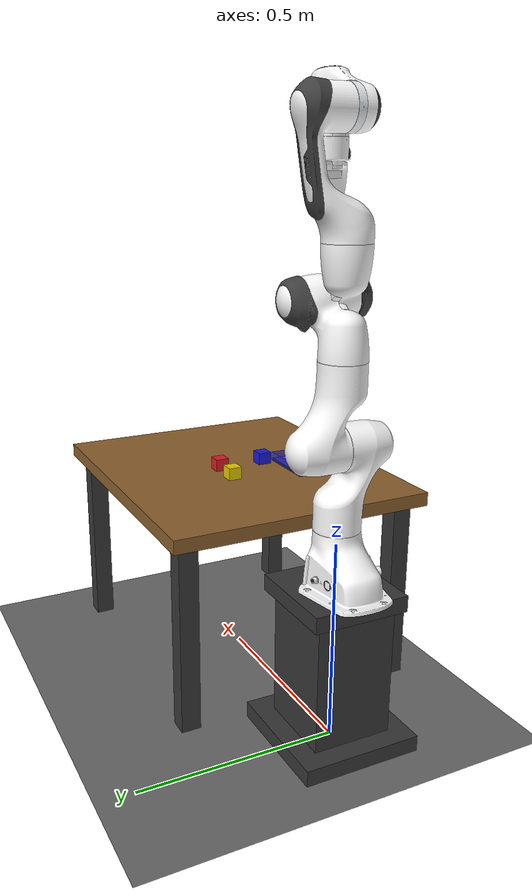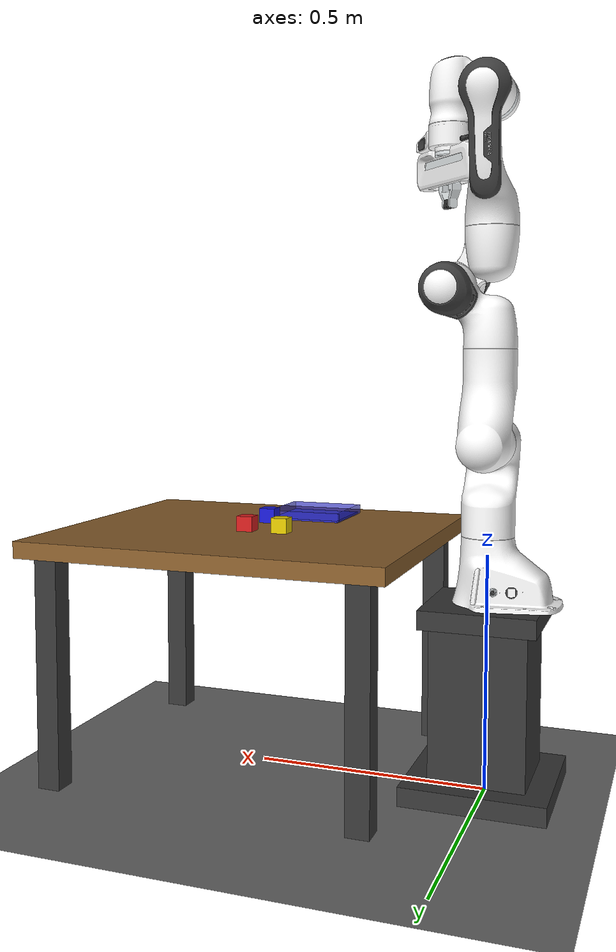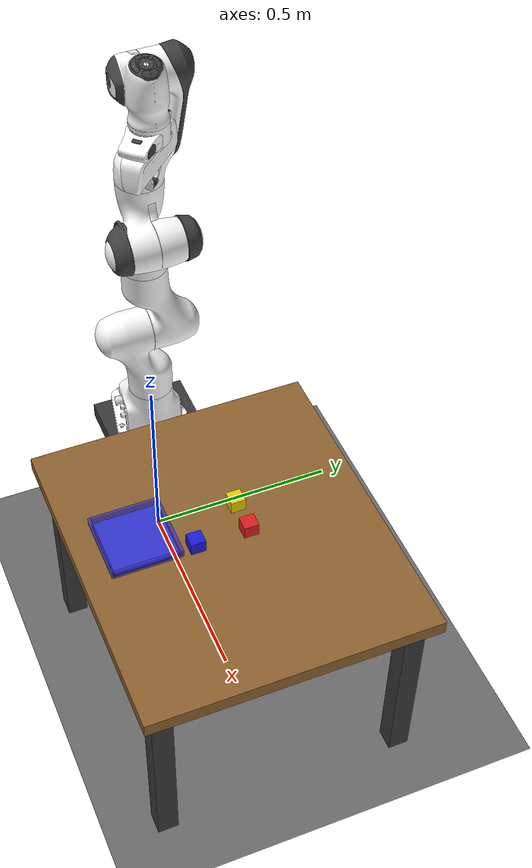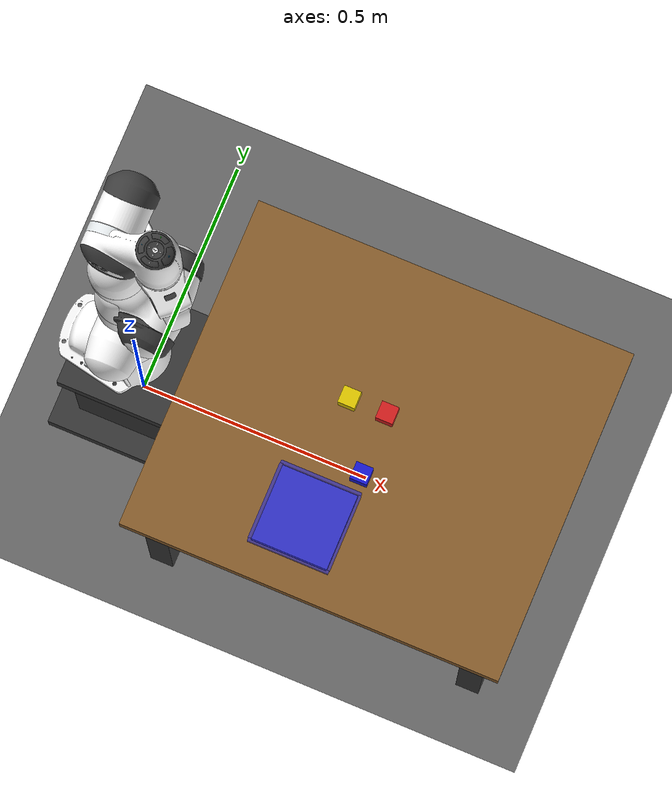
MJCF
<mujoco model="frank_pick_place">

  <compiler angle="radian"
            meshdir="mujoco_menagerie-main/franka_emika_panda/assets"
            autolimits="true"/>

  <option timestep="0.002" gravity="0 0 -9.81" integrator="implicitfast"
          cone="elliptic" impratio="10"/>

  <visual>
    <headlight ambient="0.5 0.5 0.5" diffuse="0.5 0.5 0.5" specular="0.1 0.1 0.1"/>
    <rgba haze="0.2 0.3 0.4 1"/>
    <quality shadowsize="2048"/>
  </visual>

  <!-- ===================== ASSETS ===================== -->
  <asset>
    <!-- floor checker texture -->
    <texture name="floor_tex" type="2d" builtin="checker"
             rgb1="0.45 0.45 0.45" rgb2="0.38 0.38 0.38"
             width="512" height="512"/>
    <material name="floor_mat" texture="floor_tex"
              texrepeat="6 6" reflectance="0.05"/>

    <!-- table wood material -->
    <material name="table_mat" rgba="0.55 0.38 0.18 1"
              specular="0.1" shininess="0.1"/>

    <!-- robot platform dark grey -->
    <material name="platform_mat" rgba="0.22 0.22 0.22 1"/>

    <!-- cube object — red -->
    <material name="object_mat" rgba="0.85 0.12 0.12 1"
              specular="0.3" shininess="0.3"/>

    <!-- cube object — blue -->
    <material name="object_blue_mat" rgba="0.1 0.1 0.85 1"
              specular="0.3" shininess="0.3"/>

    <!-- cube object — yellow -->
    <material name="object_yellow_mat" rgba="0.9 0.8 0.0 1"
              specular="0.3" shininess="0.3"/>

    <!-- target zone — green transparent -->
    <material name="target_mat" rgba="0.1 0.85 0.2 0.35"/>

    <!-- panda robot materials -->
    <material name="white"     rgba="1 1 1 1"
              specular="0.5" shininess="0.25"/>
    <material name="off_white" rgba="0.901961 0.921569 0.929412 1"
              specular="0.5" shininess="0.25"/>
    <material name="black"     rgba="0.25 0.25 0.25 1"
              specular="0.5" shininess="0.25"/>
    <material name="green"     rgba="0 1 0 1"
              specular="0.5" shininess="0.25"/>
    <material name="light_blue" rgba="0.039216 0.541176 0.780392 1"
              specular="0.5" shininess="0.25"/>

    <!-- collision meshes -->
    <mesh name="link0_c"  file="link0.stl"/>
    <mesh name="link1_c"  file="link1.stl"/>
    <mesh name="link2_c"  file="link2.stl"/>
    <mesh name="link3_c"  file="link3.stl"/>
    <mesh name="link4_c"  file="link4.stl"/>
    <mesh name="link5_c0" file="link5_collision_0.obj"/>
    <mesh name="link5_c1" file="link5_collision_1.obj"/>
    <mesh name="link5_c2" file="link5_collision_2.obj"/>
    <mesh name="link6_c"  file="link6.stl"/>
    <mesh name="link7_c"  file="link7.stl"/>
    <mesh name="hand_c"   file="hand.stl"/>

    <!-- visual meshes -->
    <mesh file="link0_0.obj"/>  <mesh file="link0_1.obj"/>
    <mesh file="link0_2.obj"/>  <mesh file="link0_3.obj"/>
    <mesh file="link0_4.obj"/>  <mesh file="link0_5.obj"/>
    <mesh file="link0_7.obj"/>  <mesh file="link0_8.obj"/>
    <mesh file="link0_9.obj"/>  <mesh file="link0_10.obj"/>
    <mesh file="link0_11.obj"/> <mesh file="link1.obj"/>
    <mesh file="link2.obj"/>    <mesh file="link3_0.obj"/>
    <mesh file="link3_1.obj"/>  <mesh file="link3_2.obj"/>
    <mesh file="link3_3.obj"/>  <mesh file="link4_0.obj"/>
    <mesh file="link4_1.obj"/>  <mesh file="link4_2.obj"/>
    <mesh file="link4_3.obj"/>  <mesh file="link5_0.obj"/>
    <mesh file="link5_1.obj"/>  <mesh file="link5_2.obj"/>
    <mesh file="link6_0.obj"/>  <mesh file="link6_1.obj"/>
    <mesh file="link6_2.obj"/>  <mesh file="link6_3.obj"/>
    <mesh file="link6_4.obj"/>  <mesh file="link6_5.obj"/>
    <mesh file="link6_6.obj"/>  <mesh file="link6_7.obj"/>
    <mesh file="link6_8.obj"/>  <mesh file="link6_9.obj"/>
    <mesh file="link6_10.obj"/> <mesh file="link6_11.obj"/>
    <mesh file="link6_12.obj"/> <mesh file="link6_13.obj"/>
    <mesh file="link6_14.obj"/> <mesh file="link6_15.obj"/>
    <mesh file="link6_16.obj"/> <mesh file="link7_0.obj"/>
    <mesh file="link7_1.obj"/>  <mesh file="link7_2.obj"/>
    <mesh file="link7_3.obj"/>  <mesh file="link7_4.obj"/>
    <mesh file="link7_5.obj"/>  <mesh file="link7_6.obj"/>
    <mesh file="link7_7.obj"/>  <mesh file="hand_0.obj"/>
    <mesh file="hand_1.obj"/>   <mesh file="hand_2.obj"/>
    <mesh file="hand_3.obj"/>   <mesh file="hand_4.obj"/>
    <mesh file="finger_0.obj"/> <mesh file="finger_1.obj"/>
  </asset>

  <!-- ===================== DEFAULTS ===================== -->
  <default>
    <default class="panda">
      <material specular="0.5" shininess="0.25"/>
      <joint armature="0.1" damping="1" axis="0 0 1" range="-2.8973 2.8973"/>
      <general dyntype="none" biastype="affine"
               ctrlrange="-2.8973 2.8973" forcerange="-87 87"/>
      <default class="finger">
        <joint axis="0 1 0" type="slide" range="0 0.04"/>
      </default>
      <default class="visual">
        <geom type="mesh" contype="0" conaffinity="0" group="2"/>
      </default>
      <default class="collision">
        <geom type="mesh" group="3"/>
        <default class="fingertip_pad_collision_1">
          <geom type="box" size="0.0085 0.004 0.0085" pos="0 0.0055 0.0445"/>
        </default>
        <default class="fingertip_pad_collision_2">
          <geom type="box" size="0.003 0.002 0.003" pos="0.0055 0.002 0.05"/>
        </default>
        <default class="fingertip_pad_collision_3">
          <geom type="box" size="0.003 0.002 0.003" pos="-0.0055 0.002 0.05"/>
        </default>
        <default class="fingertip_pad_collision_4">
          <geom type="box" size="0.003 0.002 0.0035" pos="0.0055 0.002 0.0395"/>
        </default>
        <default class="fingertip_pad_collision_5">
          <geom type="box" size="0.003 0.002 0.0035" pos="-0.0055 0.002 0.0395"/>
        </default>
      </default>
    </default>
  </default>

  <!-- ===================== WORLD ===================== -->
  <worldbody>

    <!-- lighting — two lights for good depth perception -->
    <light name="main_light" pos="0.5 0 2.5" dir="0 0 -1"
           diffuse="0.7 0.7 0.7" specular="0.15 0.15 0.15" castshadow="true"/>
    <light name="fill_light" pos="-1 1 2" dir="0.5 -0.5 -1"
           diffuse="0.3 0.3 0.3" specular="0.0 0.0 0.0" castshadow="false"/>

    <!-- floor -->
    <geom name="floor" type="plane" size="3 3 0.1"
          material="floor_mat" friction="0.4 0.005 0.0001"
          contype="1" conaffinity="1"/>

    <!-- robot pedestal — robot base mounts at z=0.4 -->
    <geom name="platform_top"  type="box" size="0.12 0.12 0.02"
          pos="0 0 0.38" material="platform_mat"/>
    <geom name="platform_body" type="box" size="0.10 0.10 0.18"
          pos="0 0 0.20" material="platform_mat"/>
    <geom name="platform_base" type="box" size="0.15 0.15 0.02"
          pos="0 0 0.02" material="platform_mat"/>

    <!-- table — surface at z=0.4 matching robot base height -->
    <geom name="table_surface" type="box" size="0.40 0.35 0.018"
          pos="0.52 0 0.512" material="table_mat"/>
    <geom name="table_leg_fl"  type="box" size="0.025 0.025 0.247"
          pos="0.18 0.30 0.247"  material="platform_mat"/>
    <geom name="table_leg_fr"  type="box" size="0.025 0.025 0.247"
          pos="0.86 0.30 0.247"  material="platform_mat"/>
    <geom name="table_leg_bl"  type="box" size="0.025 0.025 0.247"
          pos="0.18 -0.30 0.247" material="platform_mat"/>
    <geom name="table_leg_br"  type="box" size="0.025 0.025 0.247"
          pos="0.86 -0.30 0.247" material="platform_mat"/>

    <!-- ===== PANDA ROBOT (arm + hand) ===== -->
    <!-- robot base at z=0.4, same height as table surface -->
    <body name="link0" pos="0 0 0.4" childclass="panda">
      <inertial mass="0.629769" pos="-0.041018 -0.00014 0.049974"
        fullinertia="0.00315 0.00388 0.004285 8.2904e-7 0.00015 8.2299e-6"/>
      <geom mesh="link0_0"  material="off_white" class="visual"/>
      <geom mesh="link0_1"  material="black"     class="visual"/>
      <geom mesh="link0_2"  material="off_white" class="visual"/>
      <geom mesh="link0_3"  material="black"     class="visual"/>
      <geom mesh="link0_4"  material="off_white" class="visual"/>
      <geom mesh="link0_5"  material="black"     class="visual"/>
      <geom mesh="link0_7"  material="white"     class="visual"/>
      <geom mesh="link0_8"  material="white"     class="visual"/>
      <geom mesh="link0_9"  material="black"     class="visual"/>
      <geom mesh="link0_10" material="off_white" class="visual"/>
      <geom mesh="link0_11" material="white"     class="visual"/>
      <geom mesh="link0_c" class="collision"/>

      <body name="link1" pos="0 0 0.333">
        <inertial mass="4.970684" pos="0.003875 0.002081 -0.04762"
          fullinertia="0.70337 0.70661 0.0091170 -0.00013900 0.0067720 0.019169"/>
        <joint name="joint1"/>
        <geom material="white" mesh="link1" class="visual"/>
        <geom mesh="link1_c" class="collision"/>

        <body name="link2" quat="1 -1 0 0">
          <inertial mass="0.646926" pos="-0.003141 -0.02872 0.003495"
            fullinertia="0.0079620 2.8110e-2 2.5995e-2 -3.925e-3 1.0254e-2 7.04e-4"/>
          <joint name="joint2" range="-1.7628 1.7628"/>
          <geom material="white" mesh="link2" class="visual"/>
          <geom mesh="link2_c" class="collision"/>

          <body name="link3" pos="0 -0.316 0" quat="1 1 0 0">
            <joint name="joint3"/>
            <inertial mass="3.228604" pos="2.7518e-2 3.9252e-2 -6.6502e-2"
              fullinertia="3.7242e-2 3.6155e-2 1.083e-2 -4.761e-3 -1.1396e-2 -1.2805e-2"/>
            <geom mesh="link3_0" material="white" class="visual"/>
            <geom mesh="link3_1" material="white" class="visual"/>
            <geom mesh="link3_2" material="white" class="visual"/>
            <geom mesh="link3_3" material="black" class="visual"/>
            <geom mesh="link3_c" class="collision"/>

            <body name="link4" pos="0.0825 0 0" quat="1 1 0 0">
              <inertial mass="3.587895" pos="-5.317e-2 1.04419e-1 2.7454e-2"
                fullinertia="2.5853e-2 1.9552e-2 2.8323e-2 7.796e-3 -1.332e-3 8.641e-3"/>
              <joint name="joint4" range="-3.0718 -0.0698"/>
              <geom mesh="link4_0" material="white" class="visual"/>
              <geom mesh="link4_1" material="white" class="visual"/>
              <geom mesh="link4_2" material="black" class="visual"/>
              <geom mesh="link4_3" material="white" class="visual"/>
              <geom mesh="link4_c" class="collision"/>

              <body name="link5" pos="-0.0825 0.384 0" quat="1 -1 0 0">
                <inertial mass="1.225946" pos="-1.1953e-2 4.1065e-2 -3.8437e-2"
                  fullinertia="3.5549e-2 2.9474e-2 8.627e-3 -2.117e-3 -4.037e-3 2.29e-4"/>
                <joint name="joint5"/>
                <geom mesh="link5_0" material="black" class="visual"/>
                <geom mesh="link5_1" material="white" class="visual"/>
                <geom mesh="link5_2" material="white" class="visual"/>
                <geom mesh="link5_c0" class="collision"/>
                <geom mesh="link5_c1" class="collision"/>
                <geom mesh="link5_c2" class="collision"/>

                <body name="link6" quat="1 1 0 0">
                  <inertial mass="1.666555" pos="6.0149e-2 -1.4117e-2 -1.0517e-2"
                    fullinertia="1.964e-3 4.354e-3 5.433e-3 1.09e-4 -1.158e-3 3.41e-4"/>
                  <joint name="joint6" range="-0.0175 3.7525"/>
                  <geom mesh="link6_0"  material="off_white"  class="visual"/>
                  <geom mesh="link6_1"  material="white"      class="visual"/>
                  <geom mesh="link6_2"  material="black"      class="visual"/>
                  <geom mesh="link6_3"  material="white"      class="visual"/>
                  <geom mesh="link6_4"  material="white"      class="visual"/>
                  <geom mesh="link6_5"  material="white"      class="visual"/>
                  <geom mesh="link6_6"  material="white"      class="visual"/>
                  <geom mesh="link6_7"  material="light_blue" class="visual"/>
                  <geom mesh="link6_8"  material="light_blue" class="visual"/>
                  <geom mesh="link6_9"  material="black"      class="visual"/>
                  <geom mesh="link6_10" material="black"      class="visual"/>
                  <geom mesh="link6_11" material="white"      class="visual"/>
                  <geom mesh="link6_12" material="green"      class="visual"/>
                  <geom mesh="link6_13" material="white"      class="visual"/>
                  <geom mesh="link6_14" material="black"      class="visual"/>
                  <geom mesh="link6_15" material="black"      class="visual"/>
                  <geom mesh="link6_16" material="white"      class="visual"/>
                  <geom mesh="link6_c" class="collision"/>

                  <body name="link7" pos="0.088 0 0" quat="1 1 0 0">
                    <inertial mass="7.35522e-01" pos="1.0517e-2 -4.252e-3 6.1597e-2"
                      fullinertia="1.2516e-2 1.0027e-2 4.815e-3 -4.28e-4 -1.196e-3 -7.41e-4"/>
                    <joint name="joint7"/>
                    <geom mesh="link7_0" material="white" class="visual"/>
                    <geom mesh="link7_1" material="black" class="visual"/>
                    <geom mesh="link7_2" material="black" class="visual"/>
                    <geom mesh="link7_3" material="black" class="visual"/>
                    <geom mesh="link7_4" material="black" class="visual"/>
                    <geom mesh="link7_5" material="black" class="visual"/>
                    <geom mesh="link7_6" material="black" class="visual"/>
                    <geom mesh="link7_7" material="white" class="visual"/>
                    <geom mesh="link7_c" class="collision"/>

                    <!-- hand + gripper -->
                    <body name="hand" pos="0 0 0.107" quat="0.9238795 0 0 -0.3826834">
                      <inertial mass="0.73" pos="-0.01 0 0.03"
                                diaginertia="0.001 0.0025 0.0017"/>
                      <geom mesh="hand_0" material="off_white" class="visual"/>
                      <geom mesh="hand_1" material="black"     class="visual"/>
                      <geom mesh="hand_2" material="black"     class="visual"/>
                      <geom mesh="hand_3" material="white"     class="visual"/>
                      <geom mesh="hand_4" material="off_white" class="visual"/>
                      <geom mesh="hand_c" class="collision"/>

                      <!-- gripper pinch site — used for distance calculations -->
                      <site name="pinch" pos="0 0 0.175" size="0.005"
                            rgba="1 0.5 0 0.8" group="5"/>

                      <body name="left_finger" pos="0 0 0.0584">
                        <inertial mass="0.015" pos="0 0 0"
                                  diaginertia="2.375e-6 2.375e-6 7.5e-7"/>
                        <joint name="finger_joint1" class="finger"/>
                        <geom mesh="finger_0" material="off_white" class="visual"/>
                        <geom mesh="finger_1" material="black"     class="visual"/>
                        <geom mesh="finger_0" class="collision"/>
                        <geom class="fingertip_pad_collision_1"/>
                        <geom class="fingertip_pad_collision_2"/>
                        <geom class="fingertip_pad_collision_3"/>
                        <geom class="fingertip_pad_collision_4"/>
                        <geom class="fingertip_pad_collision_5"/>
                      </body>

                      <body name="right_finger" pos="0 0 0.0584" quat="0 0 0 1">
                        <inertial mass="0.015" pos="0 0 0"
                                  diaginertia="2.375e-6 2.375e-6 7.5e-7"/>
                        <joint name="finger_joint2" class="finger"/>
                        <geom mesh="finger_0" material="off_white" class="visual"/>
                        <geom mesh="finger_1" material="black"     class="visual"/>
                        <geom mesh="finger_0" class="collision"/>
                        <geom class="fingertip_pad_collision_1"/>
                        <geom class="fingertip_pad_collision_2"/>
                        <geom class="fingertip_pad_collision_3"/>
                        <geom class="fingertip_pad_collision_4"/>
                        <geom class="fingertip_pad_collision_5"/>
                      </body>
                    </body>
                  </body>
                </body>
              </body>
            </body>
          </body>
        </body>
      </body>
    </body>

    <!-- ===== CUBE OBJECT ===== -->
    <!-- starts on table surface, z=0.53 (table) + 0.025 (half cube height) -->
    <body name="object" pos="0.52 0.05 0.545">
      <freejoint name="object_joint"/>
      <geom name="object_geom" type="box" size="0.018 0.018 0.018"
            material="object_mat"
            friction="1.0 0.05 0.001"
            condim="4" contype="1" conaffinity="1"
            solref="0.008 1" solimp="0.99 0.999 0.001 0.5 2"/>
      <inertial pos="0 0 0" mass="0.1"
                diaginertia="1.5e-5 1.5e-5 1.5e-5"/>
    </body>

    <!-- BLUE CUBE -->
    <body name="object_blue" pos="0.52 -0.08 0.545">
      <freejoint name="object_blue_joint"/>
      <geom name="object_blue_geom" type="box" size="0.018 0.018 0.018"
            material="object_blue_mat"
            friction="0.8 0.05 0.001"
            condim="3" contype="1" conaffinity="1"
            solref="0.008 1" solimp="0.99 0.999 0.001 0.5 2"/>
      <inertial pos="0 0 0" mass="0.1"
                diaginertia="1.5e-5 1.5e-5 1.5e-5"/>
    </body>

    <!-- YELLOW CUBE -->
    <body name="object_yellow" pos="0.44 0.05 0.545">
      <freejoint name="object_yellow_joint"/>
      <geom name="object_yellow_geom" type="box" size="0.018 0.018 0.018"
            material="object_yellow_mat"
            friction="0.8 0.05 0.001"
            condim="3" contype="1" conaffinity="1"
            solref="0.008 1" solimp="0.99 0.999 0.001 0.5 2"/>
      <inertial pos="0 0 0" mass="0.1"
                diaginertia="1.5e-5 1.5e-5 1.5e-5"/>
    </body>

    <!-- ===== PLACEMENT TRAY ===== -->
    <body name="tray" pos="0.45 -0.20 0.531">
        <!-- tray floor -->
        <geom name="tray_floor" type="box" size="0.08 0.08 0.003"
              rgba="0.2 0.2 0.8 1" contype="1" conaffinity="1"/>
        <!-- tray walls -->
        <geom name="tray_wall_front" type="box" size="0.085 0.003 0.01"
              pos="0 0.083 0.01" rgba="0.2 0.2 0.8 0.7"
              contype="1" conaffinity="1"/>
        <geom name="tray_wall_back"  type="box" size="0.085 0.003 0.01"
              pos="0 -0.083 0.01" rgba="0.2 0.2 0.8 0.7"
              contype="1" conaffinity="1"/>
        <geom name="tray_wall_left"  type="box" size="0.003 0.08 0.01"
              pos="0.083 0 0.01" rgba="0.2 0.2 0.8 0.7"
              contype="1" conaffinity="1"/>
        <geom name="tray_wall_right" type="box" size="0.003 0.08 0.01"
              pos="-0.083 0 0.01" rgba="0.2 0.2 0.8 0.7"
              contype="1" conaffinity="1"/>
    </body>
    <!-- ===== TARGET ZONE ===== -->
    <!-- flat marker on table showing where to place the cube -->
    <body name="target_indicator" pos="0.45 -0.2 0.531">
      <geom name="target_geom" type="box" size="0.05 0.08 0.001"
            material="target_mat" contype="0" conaffinity="0"/>
    </body>

    <!-- ===== OVERHEAD CAMERA ===== -->
    <camera name="overhead_cam"
            pos="0.5 -0.05 1.5"
            euler="0 0 0"
            fovy="60"/>
  </worldbody>

  <!-- ===================== PHYSICS ===================== -->
  <tendon>
    <fixed name="split">
      <joint joint="finger_joint1" coef="0.5"/>
      <joint joint="finger_joint2" coef="0.5"/>
    </fixed>
  </tendon>

  <equality>
    <joint joint1="finger_joint1" joint2="finger_joint2"
           solimp="0.95 0.99 0.001" solref="0.005 1"/>
  </equality>

  <contact>
    <exclude body1="link0" body2="link1"/>
    <exclude body1="hand"  body2="left_finger"/>
    <exclude body1="hand"  body2="right_finger"/>
  </contact>

  <!-- ===================== ACTUATORS ===================== -->
  <actuator>
    <!-- arm joints 1-7 -->
    <general class="panda" name="actuator1" joint="joint1"
             gainprm="4500" biasprm="0 -4500 -450"/>
    <general class="panda" name="actuator2" joint="joint2"
             gainprm="4500" biasprm="0 -4500 -450" ctrlrange="-1.7628 1.7628"/>
    <general class="panda" name="actuator3" joint="joint3"
             gainprm="3500" biasprm="0 -3500 -350"/>
    <general class="panda" name="actuator4" joint="joint4"
             gainprm="3500" biasprm="0 -3500 -350" ctrlrange="-3.0718 -0.0698"/>
    <general class="panda" name="actuator5" joint="joint5"
             gainprm="2000" biasprm="0 -2000 -200" forcerange="-12 12"/>
    <general class="panda" name="actuator6" joint="joint6"
             gainprm="2000" biasprm="0 -2000 -200" forcerange="-12 12"
             ctrlrange="-0.0175 3.7525"/>
    <general class="panda" name="actuator7" joint="joint7"
             gainprm="2000" biasprm="0 -2000 -200" forcerange="-12 12"/>

    <!-- gripper: 0=open, 255=closed -->
    <general class="panda" name="actuator8" tendon="split"
              ctrlrange="0 255"
              forcerange="-300 300"
              gainprm="15"
              biasprm="0 -550 -10"/>
  </actuator>

  <!-- ===================== KEYFRAMES ===================== -->
  <keyframe>
    <!-- home: arm in safe position, gripper open -->
    <!-- qpos: 7 arm joints + 2 finger joints -->
    <!-- ctrl: 7 arm actuators + 1 gripper actuator -->
    <key name="home"
         qpos="0 0.3 0 -1.57079 0 2.0 -0.7853 0.04 0.04"
         ctrl="0 0.3 0 -1.57079 0 2.0 -0.7853 0"/>
  </keyframe>

</mujoco>
